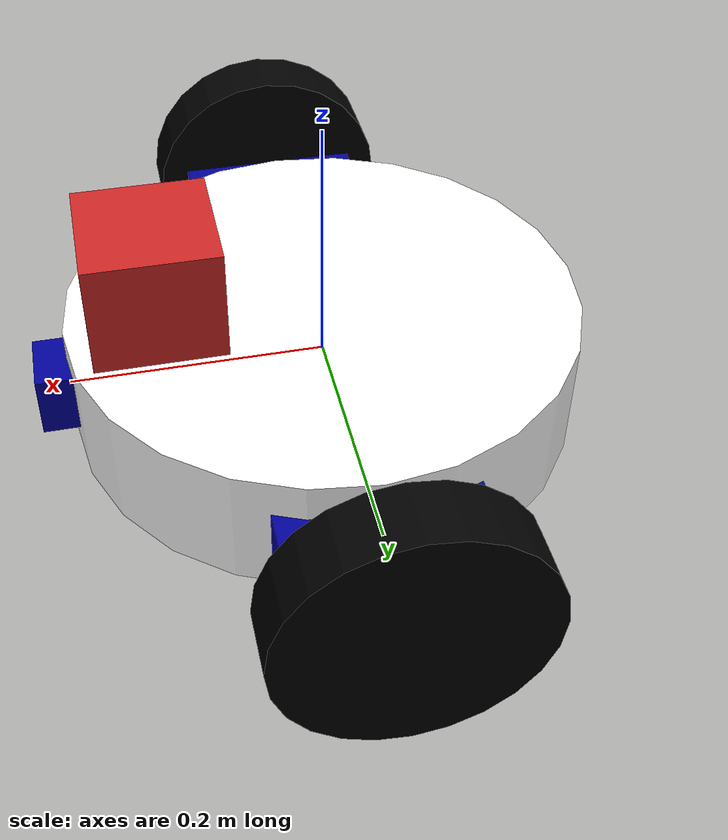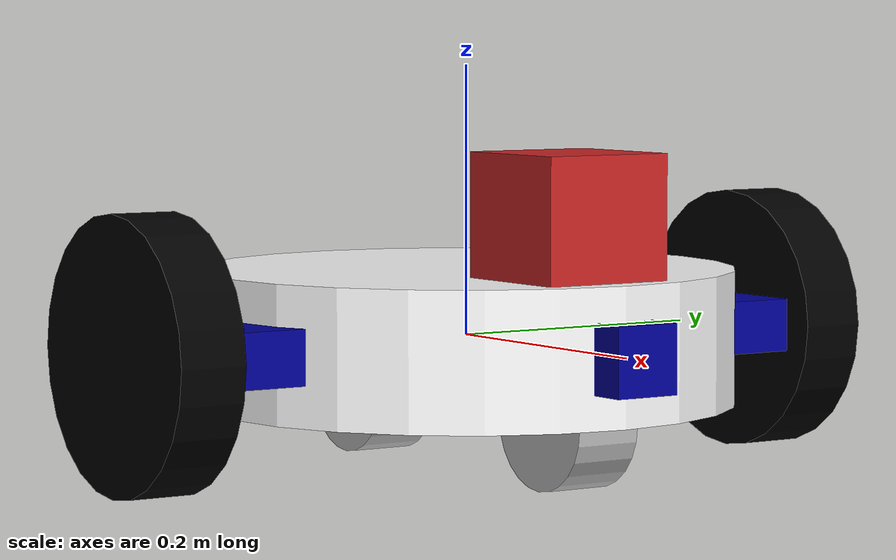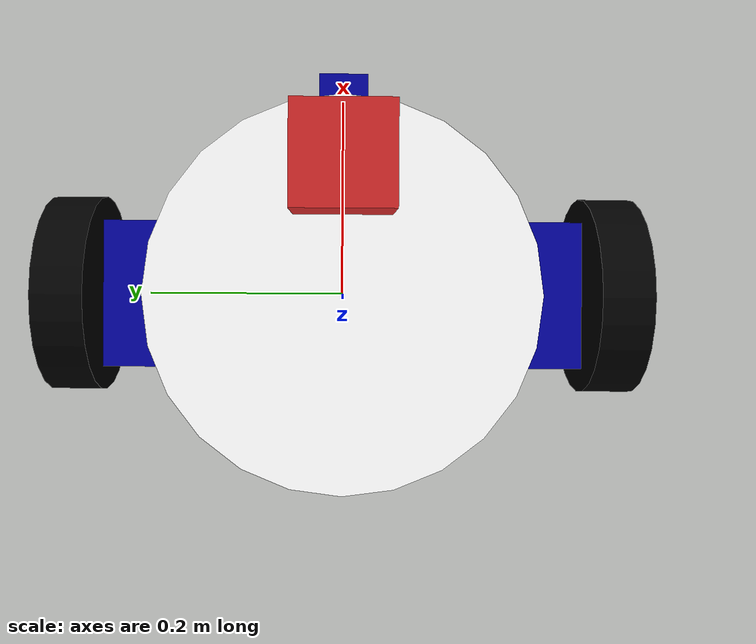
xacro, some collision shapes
<?xml version='1.0'?>
<robot name="slam_bot" xmlns:xacro="http://www.ros.org/wiki/xacro">
    <xacro:include filename="$(find slam_project)/urdf/slam_bot.gazebo">
    </xacro:include>
    <material name="blue">
        <color rgba="0 0 0.6 1">
        </color>
    </material>
    <material name="white">
        <color rgba="1 1 1 1">
        </color>
    </material>
    <material name="grey">
        <color rgba="192 192 192 1">
        </color>
    </material>
    <material name="black">
        <color rgba="0 0 0 1">
        </color>
    </material>
    <link name="robot_footprint"/>
    <joint name="robot_footprint_joint" type="fixed">
        <origin rpy="0 0 0" xyz="0 0 0">
        </origin>
        <parent link="robot_footprint">
        </parent>
        <child link="base_cylinder">
        </child>
    </joint>
    <link name="base_cylinder">
        <pose>
            0 0 0.1 0 0 0
        </pose>
        <inertial>
            <mass value="15.0">
            </mass>
            <origin rpy=" 0 0 0" xyz="0.0 0 0">
            </origin>
            <inertia ixx="0.1" ixy="0" ixz="0" iyy="0.1" iyz="0" izz="0.1">
            </inertia>
        </inertial>
        <collision name="collision">
            <origin rpy=" 0 0 0" xyz="0 0 0">
            </origin>
            <geometry>
                <cylinder length="0.1" radius="0.2">
                </cylinder>
            </geometry>
        </collision>
        <visual name="base_cylinder_visual">
            <geometry>
                <cylinder length="0.1" radius="0.2">
                </cylinder>
            </geometry>
            <material name="white">
            </material>
        </visual>

    </link>
    <!--base_box -->
    <link name="base_box">
        <inertial>
            <mass value="5.0">
            </mass>
            <origin rpy=" 0 0 0" xyz="0 0 0">
            </origin>
            <inertia ixx="0.1" ixy="0" ixz="0" iyy="0.1" iyz="0" izz="0.1">
            </inertia>
        </inertial>
        <collision name="collision">
            <origin rpy=" 0 0 0" xyz="0 0 0">
            </origin>
            <geometry>
                <box size="0.15 0.5 0.04">
                </box>
            </geometry>
        </collision>
        <visual>
            <geometry>
                <box size="0.15 0.5 0.04">
                </box>
            </geometry>
            <material name="blue">
            </material>
        </visual>
    </link>
    <joint name="base_box_joint" type="fixed">
        <parent link="base_cylinder">
        </parent>
        <child link="base_box">
        </child>
        <origin xyz="0 0 0">
        </origin>
    </joint>
    <!--left_wheel-->
    <link name="left_wheel">
        <inertial>
            <mass value="5.0">
            </mass>
            <origin rpy=" 0 1.5707 1.5707" xyz="0.0 0 0">
            </origin>
            <inertia ixx="0.1" ixy="0" ixz="0" iyy="0.1" iyz="0" izz="0.1">
            </inertia>
        </inertial>
        <collision name="collision">
            <origin rpy=" 0 1.5707 1.5707" xyz="0.0 0 0">
            </origin>
            <geometry>
                <cylinder length="0.05" radius="0.1">
                </cylinder>
            </geometry>
        </collision>
        <visual name="left_wheel_visual">
            <origin rpy=" 0 1.5707 1.5707" xyz="0.0 0 0">
            </origin>
            <geometry>
                <cylinder length="0.05" radius="0.1">
                </cylinder>
            </geometry>
            <material name="black">
            </material>
        </visual>
    </link>
    <joint name="left_wheel_hinge" type="continuous">
        <origin rpy="0 0 0" xyz="0 0.27 0">
        </origin>
        <child link="left_wheel">
        </child>
        <parent link="base_box">
        </parent>
        <axis rpy="0 0 0" xyz="0 1 0">
        </axis>
        <limit effort="10000" velocity="1000">
        </limit>
        <joint_properties damping="1.0" friction="1.0">
        </joint_properties>
    </joint>
    <!--right_wheel-->
    <link name="right_wheel">
        <inertial>
            <mass value="5.0">
            </mass>
            <origin rpy=" 0 1.5707 1.5707" xyz="0.0 0 0">
            </origin>
            <inertia ixx="0.1" ixy="0" ixz="0" iyy="0.1" iyz="0" izz="0.1">
            </inertia>
        </inertial>
        <collision name="collision">
            <origin rpy=" 0 1.5707 1.5707" xyz="0.0 0 0">
            </origin>
            <geometry>
                <cylinder length="0.05" radius="0.1">
                </cylinder>
            </geometry>
        </collision>
        <visual name="right_wheel_visual">
            <origin rpy=" 0 1.5707 1.5707" xyz="0.0 0 0">
            </origin>
            <geometry>
                <cylinder length="0.05" radius="0.1">
                </cylinder>
            </geometry>
            <material name="black">
            </material>
        </visual>
    </link>
    <joint name="right_wheel_hinge" type="continuous">
        <origin rpy="0 0 0" xyz="0 -0.27 0">
        </origin>
        <child link="right_wheel">
        </child>
        <parent link="base_box">
        </parent>
        <axis rpy="0 0 0" xyz="0 1 0">
        </axis>
        <limit effort="10000" velocity="1000">
        </limit>
        <joint_properties damping="1.0" friction="1.0">
        </joint_properties>
    </joint>
    <!--back wheel-->
    <link name="back_wheel">
        <inertial>
            <mass value="3.0">
            </mass>
            <origin rpy=" 0 1.5707 1.5707" xyz="0.0 0 0">
            </origin>
            <inertia ixx="0.1" ixy="0" ixz="0" iyy="0.1" iyz="0" izz="0.1">
            </inertia>
        </inertial>
        <collision name="collision_back_wheel">
            <origin rpy=" 0 1.5707 1.5707" xyz="0 0 0">
            </origin>
            <geometry>
                <cylinder length="0.05" radius="0.0499">
                </cylinder>
            </geometry>
        </collision>
        <visual>
            <origin rpy=" 0 1.5707 1.5707" xyz="0 0 0">
            </origin>
            <geometry>
                <cylinder length="0.05" radius="0.05">
                </cylinder>
            </geometry>
            <material name="grey">
            </material>
        </visual>
    </link>
    <joint name="back_wheel_hinge" type="continuous">
        <origin rpy="0 0 0" xyz="-0.13 0 -0.05">
        </origin>
        <child link="back_wheel">
        </child>
        <parent link="base_cylinder">
        </parent>
        <axis rpy="0 0 0" xyz="0 1 0">
        </axis>
        <limit effort="10000" velocity="1000">
        </limit>
        <joint_properties damping="1.0" friction="2.0">
        </joint_properties>
    </joint>
   <!--front wheel-->
    <link name="front_wheel">
        <inertial>
            <mass value="3.0">
            </mass>
            <origin rpy=" 0 1.5707 1.5707" xyz="0.0 0 0">
            </origin>
            <inertia ixx="0.1" ixy="0" ixz="0" iyy="0.1" iyz="0" izz="0.1">
            </inertia>
        </inertial>
        <collision name="collision_front_wheel">
            <origin rpy=" 0 1.5707 1.5707" xyz="0 0 0">
            </origin>
            <geometry>
                <cylinder length="0.05" radius="0.0499">
                </cylinder>
            </geometry>
        </collision>
        <visual>
            <origin rpy=" 0 1.5707 1.5707" xyz="0 0 0">
            </origin>
            <geometry>
                <cylinder length="0.05" radius="0.05">
                </cylinder>
            </geometry>
            <material name="grey">
            </material>
        </visual>
    </link>
    <joint name="front_wheel_hinge" type="continuous">
        <origin rpy="0 0 0" xyz="0.13 0 -0.05">
        </origin>
        <child link="front_wheel">
        </child>
        <parent link="base_cylinder">
        </parent>
        <axis rpy="0 0 0" xyz="0 1 0">
        </axis>
        <limit effort="10000" velocity="1000">
        </limit>
        <joint_properties damping="1.0" friction="2.0">
        </joint_properties>
    </joint>
    <!--hokuyo-->
    <link name="hokuyo">
        <inertial>
            <mass value="0.1">
            </mass>
            <origin rpy="0 0 0" xyz="0.0 0 0">
            </origin>
            <inertia ixx="1e-6" ixy="0" ixz="0" iyy="1e-6" iyz="0" izz="1e-6">
            </inertia>
        </inertial>
        <collision name="collision">
            <origin rpy="0 0 0" xyz="0.0 0 0">
            </origin>
            <geometry>
                <box size="0.1 0.1 0.1">
                </box>
            </geometry>
        </collision>
        <visual name="hokuyo_visual">
            <origin rpy=" 0 0 0" xyz="0.0 0 0">
            </origin>
            <geometry>
                <mesh filename="package://slam_project/meshes/hokuyo.dae">
                </mesh>
            </geometry>
            <material name="red">
            </material>
        </visual>
    </link>
    <joint name="hokuyo_joint" type="fixed">
        <origin rpy="0 0 0" xyz="0.13 0 0.09">
        </origin>
        <child link="hokuyo">
        </child>
        <parent link="base_cylinder">
        </parent>
    </joint>
    <!--camera-->
    <link name="camera">
        <inertial>
            <mass value="0.1">
            </mass>
            <origin rpy="0 0 0" xyz="0.0 0 0">
            </origin>
            <inertia ixx="1e-6" ixy="0" ixz="0" iyy="1e-6" iyz="0" izz="1e-6">
            </inertia>
        </inertial>
        <collision name="collision">
            <origin rpy="0 0 0" xyz="0.0 0 0">
            </origin>
            <geometry>
                <box size="0.05 0.05 0.05">
                </box>
            </geometry>
        </collision>
        <visual name="camera_visual">
            <origin rpy=" 0 0 0" xyz="0.0 0 0">
            </origin>
            <geometry>
                <box size="0.05 0.05 0.05">
                </box>
            </geometry>
            <material name="blue">
            </material>
        </visual>
    </link>
    <joint name="camera_joint" type="fixed">
        <origin rpy="0 0 0" xyz="0.2 0 0">
        </origin>
        <child link="camera">
        </child>
        <parent link="base_cylinder">
        </parent>
    </joint>
    <link name="camera_rgbd_frame"/>
    <joint name="camera_frame_joint" type="fixed">
        <origin rpy="-1.5707 0 -1.5707" xyz="0 0 0"/>
        <parent link="camera"/>
        <child link="camera_rgbd_frame"/>
    </joint>

</robot>
